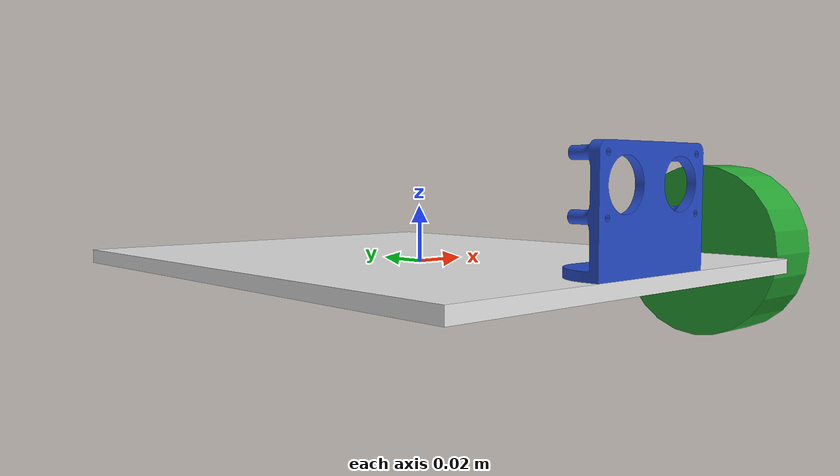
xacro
<?xml version="1.0"?>
<robot xmlns:xacro="http://www.ros.org/wiki/xacro" name="MoRVE_robot">
    <xacro:arg name="prefix" default="" />

    <!-- Includes material file -->
    <xacro:include filename="$(find morve_description)/description/urdf/morve.materials.xacro" /> <!-- Space after string in double quotes is mandatory -->

    <!-- Includes morve ros2_control description -->
    <xacro:include filename="$(find morve_description)/description/urdf/ros2_control/morve.ros2_control.xacro" /> <!-- Space after string in double quotes is mandatory -->

    <!-- Includes visual description of the robot -->
    <xacro:include filename="$(find morve_description)/description/urdf/morve_description.urdf.xacro" /> <!-- Space after string in double quotes is mandatory -->

    <!-- Use of macros defined in the included files. -->
    <xacro:morve_ros2_control name="MoRVE" prefix="$(arg prefix)" />
    <xacro:morve_description_urdf prefix="$(arg prefix)" />
</robot>

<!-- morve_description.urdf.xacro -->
<robot xmlns:xacro="http://www.ros.org/wiki/xacro">
    <xacro:macro name="morve_description_urdf" params="prefix">

    <!-- Constants for robot dimensions -->
    <xacro:property name="PI" value="3.1415926535897931"/>
    <xacro:property name="base_mass" value="0.3" /> <!-- arbitrary value for base mass -->
    <xacro:property name="base_width" value="0.16" />
    <xacro:property name="base_length" value="0.2" />
    <xacro:property name="base_height" value="0.005" />
    <xacro:property name="wheel_mass" value="0.3" /> <!-- arbitrary value for wheel mass -->
    <xacro:property name="wheel_length" value="0.025" />
    <xacro:property name="wheel_radius" value="0.0325" />
    <xacro:property name="track_width" value="0.2" />
    <xacro:property name="wheel_base" value="0.12" />
    <xacro:property name="track_width_half" value="${track_width/2}"/>
    <xacro:property name="wheel_base_half" value="${wheel_base/2}" />
    <xacro:property name="z_offset" value="${base_height/2}" /> <!-- Space btw top of beam and the each joint -->

    <!-- Base link -->
    <link name="${prefix}base_link">
        <visual>
             <origin xyz="0.0 0.0 0.0" rpy="0.0 0.0 0.0"/>
             <geometry>
                <box size="${base_width} ${base_length} ${base_height}"/>
             </geometry>
             <material name="white"/>
        </visual>
    </link>

    <!-- Front left wheel joint and link (part) -->
    <joint name="${prefix}front_left_wheel_joint" type="continuous">
        <parent link="${prefix}base_link"/>
        <child link="${prefix}front_left_wheel"/>
        <axis xyz="0 0 1"/>
        <origin xyz="${track_width_half} ${-wheel_base_half} ${z_offset}" rpy="0 ${PI/2} 0"/>
    </joint>

    <link name="${prefix}front_left_wheel">
        <visual>
            <geometry>
                <cylinder radius="${wheel_radius}" length="${wheel_length}"/>
            </geometry>
            <material name="green"/>
        </visual>
    </link>

    <!-- Test of inserting mesh of sonar holder to urdf -->
    <joint name="${prefix}front_sonar_holder_joint" type="fixed">
        <parent link="${prefix}base_link"/>
        <child link="${prefix}front_sonar_holder"/>
        <origin xyz="0.0 ${-base_length/2} ${z_offset}" rpy="0.0 0.0 0.0"/>
    </joint>

    <link name="${prefix}front_sonar_holder">
        <visual>
            <origin xyz="-0.025 0.0 0.0" rpy="0.0 0.0 0.0"/>
            <geometry>
                <mesh filename="package://morve_description/description/meshes/HC_SR04_2021_holder.stl" scale="0.001 0.001 0.001"/>
            </geometry>
            <material name="blue"/>
        </visual>
    </link>

    </xacro:macro>

</robot>
